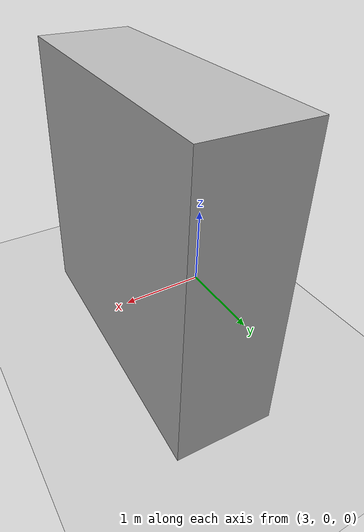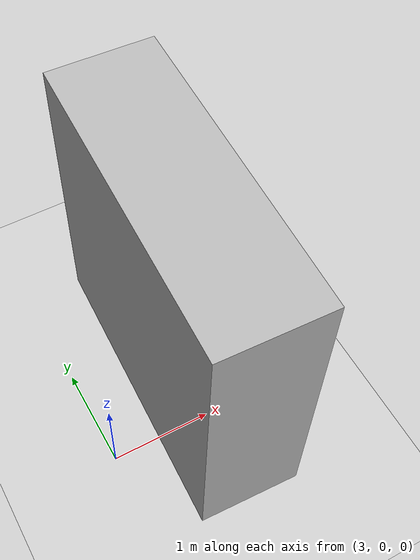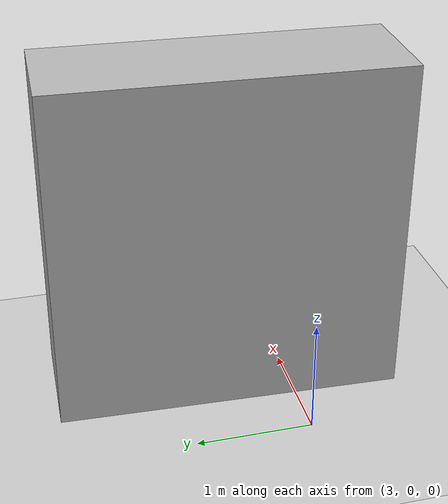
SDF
<sdf version="1.6">
 <world name="default">
  <scene>
   <sky><sunset>20</sunset></sky>
   <ambient>0.4 0.4 0.4 1</ambient>
   <background>0.7 0.7 0.7 1</background>
   <shadows>1</shadows>
  </scene>
  <spherical_coordinates>
   <surface_model>EARTH_WGS84</surface_model>
   <world_frame_orientation>ENU</world_frame_orientation>
   <latitude_deg>32.776</latitude_deg>
   <longitude_deg>39.2314</longitude_deg>
   <elevation>0</elevation>
   <heading_deg>0</heading_deg>
  </spherical_coordinates>
  <light name="sun" type="directional">
   <pose>0 0 10 0 -0 0</pose>
   <diffuse>0.8 0.8 0.8 1</diffuse>
   <specular>0.2 0.2 0.2 1</specular>
   <attenuation>
    <range>1000</range>
    <constant>0.9</constant>
    <linear>0.01</linear>
    <quadratic>0.001</quadratic>
   </attenuation>
   <direction>-0.5 0.1 -0.9</direction>
  </light>
  <model name="ground_plane">
   <static>1</static>
   <link name="link">
    <collision name="collision">
     <geometry><plane><normal>0 0 1</normal><size>100 100</size></plane></geometry>
     <surface>
      <contact><collide_bitmask>65535</collide_bitmask></contact>
      <friction><ode><mu>100</mu><mu2>50</mu2></ode></friction>
     </surface>
    </collision>
    <visual name="visual">
     <cast_shadows>0</cast_shadows>
     <geometry><plane><normal>0 0 1</normal><size>100 100</size></plane></geometry>
     <material>
      <script><uri>file://media/materials/scripts/gazebo.material</uri><name>Gazebo/Grey</name></script>
     </material>
    </visual>
   </link>
  </model>
  <gravity>0 0 -9.8</gravity>
  <magnetic_field>6e-06 2.3e-05 -4.2e-05</magnetic_field>
  <atmosphere type="adiabatic"/>
  <physics name="default_physics" default="0" type="ode">
   <max_step_size>0.001</max_step_size>
   <real_time_factor>1</real_time_factor>
   <real_time_update_rate>1000</real_time_update_rate>
  </physics>
  <model name="brick_box_3x1x3">
   <static>1</static>
   <link name="chassis">
    <pose>0 0 1.5 0 -0 0</pose>
    <collision name="collision"><geometry><box><size>3 1 3</size></box></geometry></collision>
    <visual name="visual">
     <geometry><mesh><uri>model://brick_box_3x1x3/meshes/simple_box.dae</uri><scale>3 1 3</scale></mesh></geometry>
     <material>
      <script>
       <uri>model://brick_box_3x1x3/materials/scripts</uri>
       <uri>model://brick_box_3x1x3/materials/textures</uri>
       <name>BrickBox/Diffuse</name>
      </script>
     </material>
    </visual>
   </link>
   <pose>3.99664 0.552 0 0 -0 1.5322</pose>
  </model>
 </world>
</sdf>
